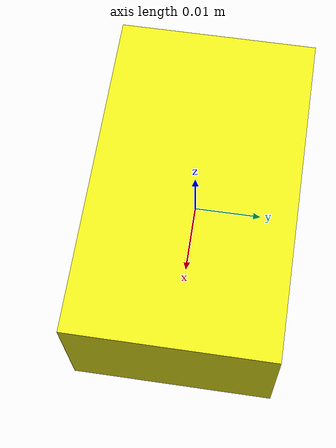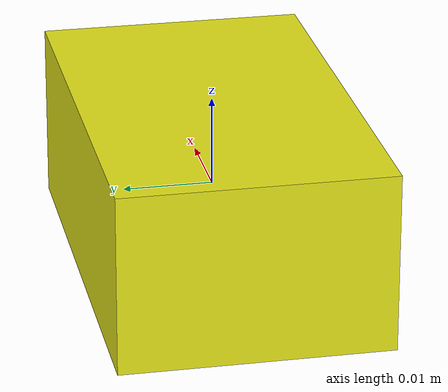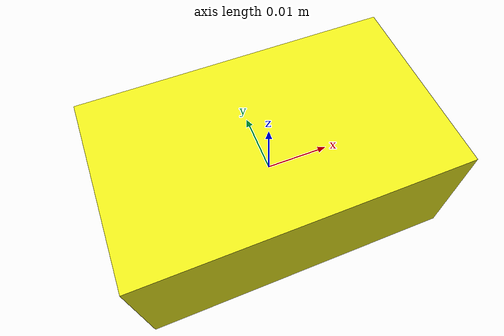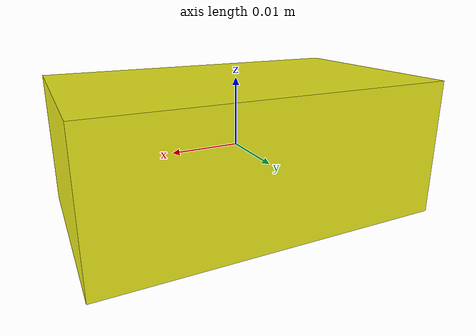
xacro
<?xml version="1.0"?>

<robot xmlns:xacro="http://ros.org/wiki/xacro" name="box">

  <!-- ==================== PARAMETERS ==================== -->

  <!-- Object name - used for link names and Gazebo plugin -->
  <xacro:arg name="name" default="box"/>

  <!-- Box dimensions (meters) -->
  <xacro:arg name="size_x" default="0.05"/>
  <xacro:arg name="size_y" default="0.03"/>
  <xacro:arg name="size_z" default="0.02"/>

  <!-- Mass (kg) -->
  <xacro:arg name="mass" default="0.1"/>

  <!-- Color selection -->
  <xacro:arg name="color" default="yellow"/>

  <!-- ==================== COMPUTED PROPERTIES ==================== -->

  <xacro:property name="obj_name" value="$(arg name)"/>
  <xacro:property name="obj_x" value="$(arg size_x)"/>
  <xacro:property name="obj_y" value="$(arg size_y)"/>
  <xacro:property name="obj_z" value="$(arg size_z)"/>
  <xacro:property name="obj_mass" value="$(arg mass)"/>
  <xacro:property name="obj_color" value="$(arg color)"/>

  <!-- Inertia for a solid rectangular box: -->
  <!-- Ixx = (1/12) * m * (y^2 + z^2) -->
  <!-- Iyy = (1/12) * m * (x^2 + z^2) -->
  <!-- Izz = (1/12) * m * (x^2 + y^2) -->
  <xacro:property name="inertia_xx" value="${(1.0/12.0) * obj_mass * (obj_y * obj_y + obj_z * obj_z)}"/>
  <xacro:property name="inertia_yy" value="${(1.0/12.0) * obj_mass * (obj_x * obj_x + obj_z * obj_z)}"/>
  <xacro:property name="inertia_zz" value="${(1.0/12.0) * obj_mass * (obj_x * obj_x + obj_y * obj_y)}"/>

  <!-- ==================== COLOR MATERIALS ==================== -->

  <material name="red">
    <color rgba="0.8 0.1 0.1 1.0"/>
  </material>

  <material name="green">
    <color rgba="0.1 0.8 0.1 1.0"/>
  </material>

  <material name="blue">
    <color rgba="0.1 0.1 0.8 1.0"/>
  </material>

  <material name="yellow">
    <color rgba="0.9 0.9 0.1 1.0"/>
  </material>

  <material name="orange">
    <color rgba="1.0 0.5 0.0 1.0"/>
  </material>

  <material name="purple">
    <color rgba="0.6 0.1 0.8 1.0"/>
  </material>

  <material name="white">
    <color rgba="0.95 0.95 0.95 1.0"/>
  </material>

  <material name="black">
    <color rgba="0.1 0.1 0.1 1.0"/>
  </material>

  <material name="grey">
    <color rgba="0.5 0.5 0.5 1.0"/>
  </material>

  <!-- ==================== LINK DEFINITION ==================== -->

  <link name="${obj_name}">

    <!-- Visual geometry -->
    <visual>
      <origin xyz="0 0 0" rpy="0 0 0"/>
      <geometry>
        <box size="${obj_x} ${obj_y} ${obj_z}"/>
      </geometry>
      <material name="${obj_color}"/>
    </visual>

    <!-- Collision geometry -->
    <collision>
      <origin xyz="0 0 0" rpy="0 0 0"/>
      <geometry>
        <box size="${obj_x} ${obj_y} ${obj_z}"/>
      </geometry>
    </collision>

    <!-- Inertial properties -->
    <inertial>
      <origin xyz="0 0 0" rpy="0 0 0"/>
      <mass value="${obj_mass}"/>
      <inertia
        ixx="${inertia_xx}" ixy="0.0" ixz="0.0"
        iyy="${inertia_yy}" iyz="0.0"
        izz="${inertia_zz}"/>
    </inertial>

  </link>

  <!-- ==================== GAZEBO PROPERTIES ==================== -->

  <!-- Gazebo material colors -->
  <xacro:if value="${obj_color == 'red'}">
    <gazebo reference="${obj_name}">
      <material>Gazebo/Red</material>
    </gazebo>
  </xacro:if>

  <xacro:if value="${obj_color == 'green'}">
    <gazebo reference="${obj_name}">
      <material>Gazebo/Green</material>
    </gazebo>
  </xacro:if>

  <xacro:if value="${obj_color == 'blue'}">
    <gazebo reference="${obj_name}">
      <material>Gazebo/Blue</material>
    </gazebo>
  </xacro:if>

  <xacro:if value="${obj_color == 'yellow'}">
    <gazebo reference="${obj_name}">
      <material>Gazebo/Yellow</material>
    </gazebo>
  </xacro:if>

  <xacro:if value="${obj_color == 'orange'}">
    <gazebo reference="${obj_name}">
      <material>Gazebo/Orange</material>
    </gazebo>
  </xacro:if>

  <xacro:if value="${obj_color == 'purple'}">
    <gazebo reference="${obj_name}">
      <material>Gazebo/Purple</material>
    </gazebo>
  </xacro:if>

  <xacro:if value="${obj_color == 'white'}">
    <gazebo reference="${obj_name}">
      <material>Gazebo/White</material>
    </gazebo>
  </xacro:if>

  <xacro:if value="${obj_color == 'black'}">
    <gazebo reference="${obj_name}">
      <material>Gazebo/Black</material>
    </gazebo>
  </xacro:if>

  <xacro:if value="${obj_color == 'grey'}">
    <gazebo reference="${obj_name}">
      <material>Gazebo/Grey</material>
    </gazebo>
  </xacro:if>

  <!-- Gazebo physics properties -->
  <gazebo reference="${obj_name}">
    <mu1>1.5</mu1>
    <mu2>1.5</mu2>
    <kp>1000000.0</kp>
    <kd>1000.0</kd>
    <minDepth>0.001</minDepth>
    <maxVel>0.1</maxVel>
    <selfCollide>false</selfCollide>
  </gazebo>

  <!-- ==================== GAZEBO PLUGINS ==================== -->

  <!-- Make box static if mass >= 500kg (used as table/fixture) -->
  <xacro:if value="${obj_mass >= 500}">
    <gazebo>
      <static>true</static>
    </gazebo>
  </xacro:if>

  <!-- Ground truth pose publisher -->
  <gazebo>
    <plugin name="p3d_${obj_name}" filename="libgazebo_ros_p3d.so">
      <ros>
        <namespace>/</namespace>
        <remapping>odom:=object_poses/${obj_name}</remapping>
      </ros>
      <body_name>${obj_name}</body_name>
      <frame_name>world</frame_name>
      <update_rate>30.0</update_rate>
      <xyz_offset>0 0 0</xyz_offset>
      <rpy_offset>0 0 0</rpy_offset>
      <gaussian_noise>0.0</gaussian_noise>
    </plugin>
  </gazebo>

</robot>
